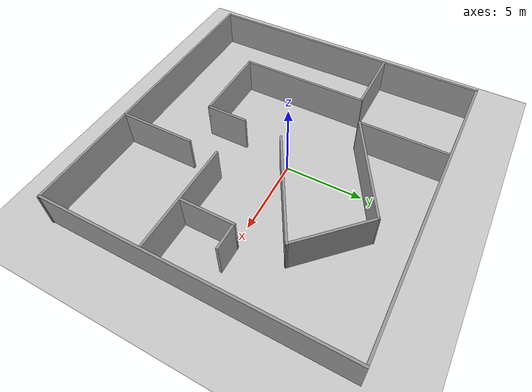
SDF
<sdf version="1.7">
 <world name="default">
  <light name="sun" type="directional">
   <pose>0 0 10 0 -0 0</pose>
   <diffuse>0.8 0.8 0.8 1</diffuse>
   <specular>0.2 0.2 0.2 1</specular>
   <attenuation>
    <range>1000</range>
    <constant>0.9</constant>
    <linear>0.01</linear>
    <quadratic>0.001</quadratic>
   </attenuation>
   <direction>-0.5 0.1 -0.9</direction>
   <spot><inner_angle>0</inner_angle><outer_angle>0</outer_angle><falloff>0</falloff></spot>
  </light>
  <model name="ground_plane">
   <static>1</static>
   <link name="link">
    <collision name="collision">
     <geometry><plane><normal>0 0 1</normal><size>100 100</size></plane></geometry>
     <surface><friction><ode><mu>100</mu><mu2>50</mu2></ode></friction></surface>
    </collision>
    <visual name="visual">
     <cast_shadows>0</cast_shadows>
     <geometry><plane><normal>0 0 1</normal><size>100 100</size></plane></geometry>
     <material>
      <script><uri>file://media/materials/scripts/gazebo.material</uri><name>Gazebo/Grey</name></script>
     </material>
    </visual>
   </link>
  </model>
  <gravity>0 0 -9.8</gravity>
  <magnetic_field>6e-06 2.3e-05 -4.2e-05</magnetic_field>
  <atmosphere type="adiabatic"/>
  <physics type="ode">
   <max_step_size>0.001</max_step_size>
   <real_time_factor>1</real_time_factor>
   <real_time_update_rate>1000</real_time_update_rate>
  </physics>
  <scene><ambient>0.4 0.4 0.4 1</ambient><background>0.7 0.7 0.7 1</background><shadows>1</shadows></scene>
  <audio><device>default</device></audio>
  <spherical_coordinates>
   <surface_model>EARTH_WGS84</surface_model>
   <latitude_deg>0</latitude_deg>
   <longitude_deg>0</longitude_deg>
   <elevation>0</elevation>
   <heading_deg>0</heading_deg>
  </spherical_coordinates>
  <model name="smaller_custom_room">
   <pose>0.004276 -0.645141 0 0 -0 0</pose>
   <link name="Wall_0">
    <collision name="Wall_0_Collision">
     <geometry><box><size>19.912 0.15 2.5</size></box></geometry>
     <pose>0 0 1.25 0 -0 0</pose>
    </collision>
    <visual name="Wall_0_Visual">
     <pose>0 0 1.25 0 -0 0</pose>
     <geometry><box><size>19.912 0.15 2.5</size></box></geometry>
     <material>
      <script><uri>file://media/materials/scripts/gazebo.material</uri><name>Gazebo/Grey</name></script>
      <ambient>1 1 1 1</ambient>
     </material>
     <meta><layer>0</layer></meta>
    </visual>
    <pose>0.040302 -9.50955 0 0 -0 3.1375</pose>
   </link>
   <link name="Wall_11">
    <collision name="Wall_11_Collision">
     <geometry><box><size>7.25 0.15 2.5</size></box></geometry>
     <pose>0 0 1.25 0 -0 0</pose>
    </collision>
    <visual name="Wall_11_Visual">
     <pose>0 0 1.25 0 -0 0</pose>
     <geometry><box><size>7.25 0.15 2.5</size></box></geometry>
     <material>
      <script><uri>file://media/materials/scripts/gazebo.material</uri><name>Gazebo/Grey</name></script>
      <ambient>1 1 1 1</ambient>
     </material>
     <meta><layer>0</layer></meta>
    </visual>
    <pose>-0.504381 5.57634 0 0 -0 -2.61799</pose>
   </link>
   <link name="Wall_13">
    <collision name="Wall_13_Collision">
     <geometry><box><size>5.25 0.15 2.5</size></box></geometry>
     <pose>0 0 1.25 0 -0 0</pose>
    </collision>
    <visual name="Wall_13_Visual">
     <pose>0 0 1.25 0 -0 0</pose>
     <geometry><box><size>5.25 0.15 2.5</size></box></geometry>
     <material>
      <script><uri>file://media/materials/scripts/gazebo.material</uri><name>Gazebo/Grey</name></script>
      <ambient>1 1 1 1</ambient>
     </material>
     <meta><layer>0</layer></meta>
    </visual>
    <pose>4.37313 5.54822 0 0 -0 -0.785398</pose>
   </link>
   <link name="Wall_14">
    <collision name="Wall_14_Collision">
     <geometry><box><size>7.5 0.15 2.5</size></box></geometry>
     <pose>0 0 1.25 0 -0 0</pose>
    </collision>
    <visual name="Wall_14_Visual">
     <pose>0 0 1.25 0 -0 0</pose>
     <geometry><box><size>7.5 0.15 2.5</size></box></geometry>
     <material>
      <script><uri>file://media/materials/scripts/gazebo.material</uri><name>Gazebo/Grey</name></script>
      <ambient>1 1 1 1</ambient>
     </material>
     <meta><layer>0</layer></meta>
    </visual>
    <pose>2.99361 1.9076 0 0 -0 -2.61799</pose>
   </link>
   <link name="Wall_16">
    <collision name="Wall_16_Collision">
     <geometry><box><size>8.5 0.15 2.5</size></box></geometry>
     <pose>0 0 1.25 0 -0 0</pose>
    </collision>
    <visual name="Wall_16_Visual">
     <pose>0 0 1.25 0 -0 0</pose>
     <geometry><box><size>8.5 0.15 2.5</size></box></geometry>
     <material>
      <script><uri>file://media/materials/scripts/gazebo.material</uri><name>Gazebo/Grey</name></script>
      <ambient>1 1 1 1</ambient>
     </material>
     <meta><layer>0</layer></meta>
    </visual>
    <pose>-5.48623 -1.01684 0 0 -0 -1.5708</pose>
   </link>
   <link name="Wall_17">
    <collision name="Wall_17_Collision">
     <geometry><box><size>5.25 0.15 2.5</size></box></geometry>
     <pose>0 0 1.25 0 -0 0</pose>
    </collision>
    <visual name="Wall_17_Visual">
     <pose>0 0 1.25 0 -0 0</pose>
     <geometry><box><size>5.25 0.15 2.5</size></box></geometry>
     <material>
      <script><uri>file://media/materials/scripts/gazebo.material</uri><name>Gazebo/Grey</name></script>
      <ambient>1 1 1 1</ambient>
     </material>
     <meta><layer>0</layer></meta>
    </visual>
    <pose>-2.93623 -5.19184 0 0 -0 0</pose>
   </link>
   <link name="Wall_18">
    <collision name="Wall_18_Collision">
     <geometry><box><size>2.75 0.15 2.5</size></box></geometry>
     <pose>0 0 1.25 0 -0 0</pose>
    </collision>
    <visual name="Wall_18_Visual">
     <pose>0 0 1.25 0 -0 0</pose>
     <geometry><box><size>2.75 0.15 2.5</size></box></geometry>
     <material>
      <script><uri>file://media/materials/scripts/gazebo.material</uri><name>Gazebo/Grey</name></script>
      <ambient>1 1 1 1</ambient>
     </material>
     <meta><layer>0</layer></meta>
    </visual>
    <pose>-0.386235 -3.89184 0 0 -0 1.5708</pose>
   </link>
   <link name="Wall_2">
    <collision name="Wall_2_Collision">
     <geometry><box><size>19.25 0.15 2.5</size></box></geometry>
     <pose>0 0 1.25 0 -0 0</pose>
    </collision>
    <visual name="Wall_2_Visual">
     <pose>0 0 1.25 0 -0 0</pose>
     <geometry><box><size>19.25 0.15 2.5</size></box></geometry>
     <material>
      <script><uri>file://media/materials/scripts/gazebo.material</uri><name>Gazebo/Grey</name></script>
      <ambient>1 1 1 1</ambient>
     </material>
     <meta><layer>0</layer></meta>
    </visual>
    <pose>9.88076 -6e-06 0 0 -0 -1.5708</pose>
   </link>
   <link name="Wall_20">
    <collision name="Wall_20_Collision">
     <geometry><box><size>7.25 0.15 2.5</size></box></geometry>
     <pose>0 0 1.25 0 -0 0</pose>
    </collision>
    <visual name="Wall_20_Visual">
     <pose>0 0 1.25 0 -0 0</pose>
     <geometry><box><size>7.25 0.15 2.5</size></box></geometry>
     <material>
      <script><uri>file://media/materials/scripts/gazebo.material</uri><name>Gazebo/Grey</name></script>
      <ambient>1 1 1 1</ambient>
     </material>
     <meta><layer>0</layer></meta>
    </visual>
    <pose>6.23648 -2.70483 0 0 -0 3.14159</pose>
   </link>
   <link name="Wall_22">
    <collision name="Wall_22_Collision">
     <geometry><box><size>5 0.15 2.5</size></box></geometry>
     <pose>0 0 1.25 0 -0 0</pose>
    </collision>
    <visual name="Wall_22_Visual">
     <pose>0 0 1.25 0 -0 0</pose>
     <geometry><box><size>5 0.15 2.5</size></box></geometry>
     <material>
      <script><uri>file://media/materials/scripts/gazebo.material</uri><name>Gazebo/Grey</name></script>
      <ambient>1 1 1 1</ambient>
     </material>
     <meta><layer>0</layer></meta>
    </visual>
    <pose>2.66832 -7.07232 0 0 -0 1.5708</pose>
   </link>
   <link name="Wall_24">
    <collision name="Wall_24_Collision">
     <geometry><box><size>3.5 0.15 2.5</size></box></geometry>
     <pose>0 0 1.25 0 -0 0</pose>
    </collision>
    <visual name="Wall_24_Visual">
     <pose>0 0 1.25 0 -0 0</pose>
     <geometry><box><size>3.5 0.15 2.5</size></box></geometry>
     <material>
      <script><uri>file://media/materials/scripts/gazebo.material</uri><name>Gazebo/Grey</name></script>
      <ambient>1 1 1 1</ambient>
     </material>
     <meta><layer>0</layer></meta>
    </visual>
    <pose>6.43676 -0.890257 0 0 -0 1.5708</pose>
   </link>
   <link name="Wall_25">
    <collision name="Wall_25_Collision">
     <geometry><box><size>1.75 0.15 2.5</size></box></geometry>
     <pose>0 0 1.25 0 -0 0</pose>
    </collision>
    <visual name="Wall_25_Visual">
     <pose>0 0 1.25 0 -0 0</pose>
     <geometry><box><size>1.75 0.15 2.5</size></box></geometry>
     <material>
      <script><uri>file://media/materials/scripts/gazebo.material</uri><name>Gazebo/Grey</name></script>
      <ambient>1 1 1 1</ambient>
     </material>
     <meta><layer>0</layer></meta>
    </visual>
    <pose>7.23676 0.784743 0 0 -0 0</pose>
   </link>
   <link name="Wall_4">
    <collision name="Wall_4_Collision">
     <geometry><box><size>19.9523 0.15 2.5</size></box></geometry>
     <pose>0 0 1.25 0 -0 0</pose>
    </collision>
    <visual name="Wall_4_Visual">
     <pose>0 0 1.25 0 -0 0</pose>
     <geometry><box><size>19.9523 0.15 2.5</size></box></geometry>
     <material>
      <script><uri>file://media/materials/scripts/gazebo.material</uri><name>Gazebo/Grey</name></script>
      <ambient>1 1 1 1</ambient>
     </material>
     <meta><layer>0</layer></meta>
    </visual>
    <pose>-0.020381 9.54999 0 0 -0 3.14159</pose>
   </link>
   <link name="Wall_5">
    <collision name="Wall_5_Collision">
     <geometry><box><size>19.1693 0.15 2.5</size></box></geometry>
     <pose>0 0 1.25 0 -0 0</pose>
    </collision>
    <visual name="Wall_5_Visual">
     <pose>0 0 1.25 0 -0 0</pose>
     <geometry><box><size>19.1693 0.15 2.5</size></box></geometry>
     <material>
      <script><uri>file://media/materials/scripts/gazebo.material</uri><name>Gazebo/Grey</name></script>
      <ambient>1 1 1 1</ambient>
     </material>
     <meta><layer>0</layer></meta>
    </visual>
    <pose>-9.84061 0.040449 0 0 -0 -1.56654</pose>
   </link>
   <link name="Wall_7">
    <collision name="Wall_7_Collision">
     <geometry><box><size>5.75 0.15 2.5</size></box></geometry>
     <pose>0 0 1.25 0 -0 0</pose>
    </collision>
    <visual name="Wall_7_Visual">
     <pose>0 0 1.25 0 -0 0</pose>
     <geometry><box><size>5.75 0.15 2.5</size></box></geometry>
     <material>
      <script><uri>file://media/materials/scripts/gazebo.material</uri><name>Gazebo/Grey</name></script>
      <ambient>1 1 1 1</ambient>
     </material>
     <meta><layer>0</layer></meta>
    </visual>
    <pose>-3.57877 6.60134 0 0 -0 1.5708</pose>
   </link>
   <link name="Wall_9">
    <collision name="Wall_9_Collision">
     <geometry><box><size>4.5 0.15 2.5</size></box></geometry>
     <pose>0 0 1.25 0 -0 0</pose>
    </collision>
    <visual name="Wall_9_Visual">
     <pose>0 0 1.25 0 -0 0</pose>
     <geometry><box><size>4.5 0.15 2.5</size></box></geometry>
     <material>
      <script><uri>file://media/materials/scripts/gazebo.material</uri><name>Gazebo/Grey</name></script>
      <ambient>1 1 1 1</ambient>
     </material>
     <meta><layer>0</layer></meta>
    </visual>
    <pose>-7.66123 3.15816 0 0 -0 3.14159</pose>
   </link>
   <static>1</static>
  </model>
  <model name="bookshelf">
   <static>1</static>
   <link name="link">
    <inertial><mass>1</mass></inertial>
    <collision name="back">
     <pose>0 0.005 0.6 0 -0 0</pose>
     <geometry><box><size>0.9 0.01 1.2</size></box></geometry>
    </collision>
    <visual name="visual1">
     <pose>0 0.005 0.6 0 -0 0</pose>
     <geometry><box><size>0.9 0.01 1.2</size></box></geometry>
     <material>
      <script><uri>file://media/materials/scripts/gazebo.material</uri><name>Gazebo/Wood</name></script>
     </material>
    </visual>
    <collision name="left_side">
     <pose>0.45 -0.195 0.6 0 -0 0</pose>
     <geometry><box><size>0.02 0.4 1.2</size></box></geometry>
    </collision>
    <visual name="visual2">
     <pose>0.45 -0.195 0.6 0 -0 0</pose>
     <geometry><box><size>0.02 0.4 1.2</size></box></geometry>
     <material>
      <script><uri>file://media/materials/scripts/gazebo.material</uri><name>Gazebo/Wood</name></script>
     </material>
    </visual>
    <collision name="right_side">
     <pose>-0.45 -0.195 0.6 0 -0 0</pose>
     <geometry><box><size>0.02 0.4 1.2</size></box></geometry>
    </collision>
    <visual name="visual3">
     <pose>-0.45 -0.195 0.6 0 -0 0</pose>
     <geometry><box><size>0.02 0.4 1.2</size></box></geometry>
     <material>
      <script><uri>file://media/materials/scripts/gazebo.material</uri><name>Gazebo/Wood</name></script>
     </material>
    </visual>
    <collision name="bottom">
     <pose>0 -0.195 0.03 0 -0 0</pose>
     <geometry><box><size>0.88 0.4 0.06</size></box></geometry>
    </collision>
    <visual name="visual4">
     <pose>0 -0.195 0.03 0 -0 0</pose>
     <geometry><box><size>0.88 0.4 0.06</size></box></geometry>
     <material>
      <script><uri>file://media/materials/scripts/gazebo.material</uri><name>Gazebo/Wood</name></script>
     </material>
    </visual>
    <collision name="top">
     <pose>0 -0.195 1.19 0 -0 0</pose>
     <geometry><box><size>0.88 0.4 0.02</size></box></geometry>
    </collision>
    <visual name="visual5">
     <pose>0 -0.195 1.19 0 -0 0</pose>
     <geometry><box><size>0.88 0.4 0.02</size></box></geometry>
     <material>
      <script><uri>file://media/materials/scripts/gazebo.material</uri><name>Gazebo/Wood</name></script>
     </material>
    </visual>
    <collision name="low_shelf">
     <pose>0 -0.195 0.43 0 -0 0</pose>
     <geometry><box><size>0.88 0.4 0.02</size></box></geometry>
    </collision>
    <visual name="visual6">
     <pose>0 -0.195 0.43 0 -0 0</pose>
     <geometry><box><size>0.88 0.4 0.02</size></box></geometry>
     <material>
      <script><uri>file://media/materials/scripts/gazebo.material</uri><name>Gazebo/Wood</name></script>
     </material>
    </visual>
    <collision name="high_shelf">
     <pose>0 -0.195 0.8 0 -0 0</pose>
     <geometry><box><size>0.88 0.4 0.02</size></box></geometry>
    </collision>
    <visual name="visual7">
     <pose>0 -0.195 0.8 0 -0 0</pose>
     <geometry><box><size>0.88 0.4 0.02</size></box></geometry>
     <material>
      <script><uri>file://media/materials/scripts/gazebo.material</uri><name>Gazebo/Wood</name></script>
     </material>
    </visual>
   </link>
   <pose>-9.02079 2.40794 0 0 -0 0</pose>
  </model>
 </world>
</sdf>
